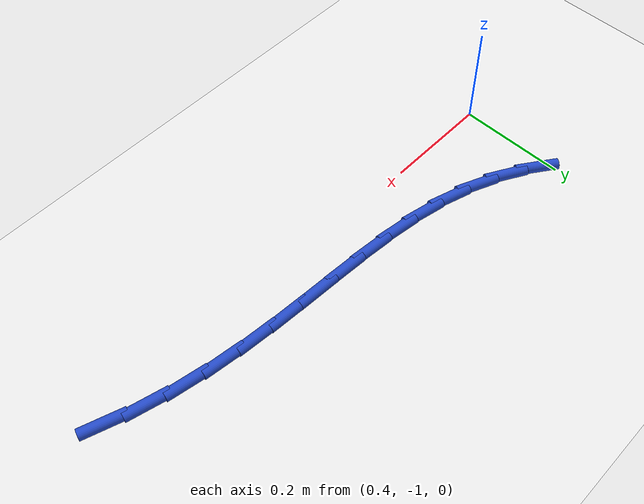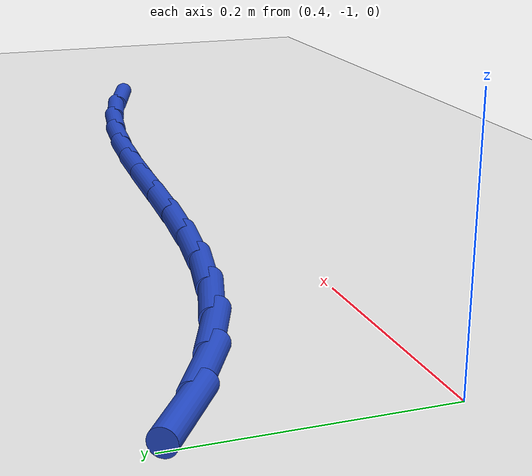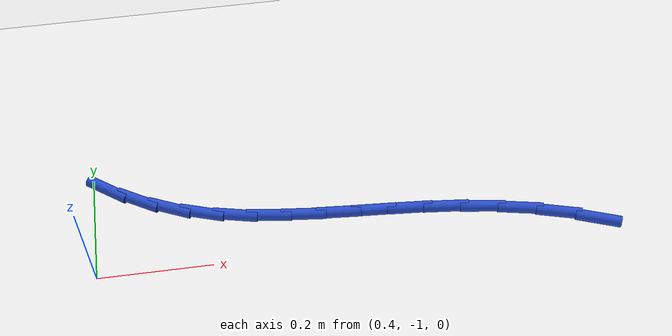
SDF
<sdf version="1.6">
 <world name="default">
  <model name="ground_plane">
   <static>1</static>
   <link name="link">
    <collision name="collision">
     <geometry><plane><normal>0 0 1</normal><size>100 100</size></plane></geometry>
     <surface><friction><ode><mu>100</mu><mu2>50</mu2></ode></friction></surface>
    </collision>
    <visual name="visual">
     <cast_shadows>0</cast_shadows>
     <geometry><plane><normal>0 0 1</normal><size>100 100</size></plane></geometry>
     <material>
      <script><uri>file://media/materials/scripts/gazebo.material</uri><name>Gazebo/WhiteGlow</name></script>
     </material>
    </visual>
   </link>
  </model>
  <model name="line">
   <link name="link_91">
    <pose>1.2749578417684302 -1.0029317350116989 0.01 0 1.57 -0.33917281439950187</pose>
    <collision name="collision">
     <geometry><cylinder><radius>0.01</radius><length>0.08</length></cylinder></geometry>
    </collision>
    <visual name="visual">
     <material>
      <script><name>Gazebo/Blue</name><uri>file://media/materials/scripts/gazebo.material</uri></script>
     </material>
     <geometry><cylinder><radius>0.01</radius><length>0.08</length></cylinder></geometry>
    </visual>
   </link>
   <link name="link_92">
    <pose>1.2093600452625846 -0.9797884087134253 0.01 0 1.57 -0.2567586073061776</pose>
    <collision name="collision">
     <geometry><cylinder><radius>0.01</radius><length>0.08</length></cylinder></geometry>
    </collision>
    <visual name="visual">
     <material>
      <script><name>Gazebo/Blue</name><uri>file://media/materials/scripts/gazebo.material</uri></script>
     </material>
     <geometry><cylinder><radius>0.01</radius><length>0.08</length></cylinder></geometry>
    </visual>
   </link>
   <link name="link_93">
    <pose>1.1440016977426912 -0.9626283300029139 0.01 0 1.57 -0.18663439988638209</pose>
    <collision name="collision">
     <geometry><cylinder><radius>0.01</radius><length>0.08</length></cylinder></geometry>
    </collision>
    <visual name="visual">
     <material>
      <script><name>Gazebo/Blue</name><uri>file://media/materials/scripts/gazebo.material</uri></script>
     </material>
     <geometry><cylinder><radius>0.01</radius><length>0.08</length></cylinder></geometry>
    </visual>
   </link>
   <link name="link_94">
    <pose>1.0790127668493599 -0.9503563402909 0.01 0 1.57 -0.13072973068575514</pose>
    <collision name="collision">
     <geometry><cylinder><radius>0.01</radius><length>0.08</length></cylinder></geometry>
    </collision>
    <visual name="visual">
     <material>
      <script><name>Gazebo/Blue</name><uri>file://media/materials/scripts/gazebo.material</uri></script>
     </material>
     <geometry><cylinder><radius>0.01</radius><length>0.08</length></cylinder></geometry>
    </visual>
   </link>
   <link name="link_95">
    <pose>1.0145232202231989 -0.9418772809881196 0.01 0 1.57 -0.09028426437969254</pose>
    <collision name="collision">
     <geometry><cylinder><radius>0.01</radius><length>0.08</length></cylinder></geometry>
    </collision>
    <visual name="visual">
     <material>
      <script><name>Gazebo/Blue</name><uri>file://media/materials/scripts/gazebo.material</uri></script>
     </material>
     <geometry><cylinder><radius>0.01</radius><length>0.08</length></cylinder></geometry>
    </visual>
   </link>
   <link name="link_96">
    <pose>0.950663025504816 -0.9360959935053075 0.01 0 1.57 -0.06612557937559062</pose>
    <collision name="collision">
     <geometry><cylinder><radius>0.01</radius><length>0.08</length></cylinder></geometry>
    </collision>
    <visual name="visual">
     <material>
      <script><name>Gazebo/Blue</name><uri>file://media/materials/scripts/gazebo.material</uri></script>
     </material>
     <geometry><cylinder><radius>0.01</radius><length>0.08</length></cylinder></geometry>
    </visual>
   </link>
   <link name="link_97">
    <pose>0.8875621503348217 -0.9319173192531999 0.01 0 1.57 -0.05894347122450765</pose>
    <collision name="collision">
     <geometry><cylinder><radius>0.01</radius><length>0.08</length></cylinder></geometry>
    </collision>
    <visual name="visual">
     <material>
      <script><name>Gazebo/Blue</name><uri>file://media/materials/scripts/gazebo.material</uri></script>
     </material>
     <geometry><cylinder><radius>0.01</radius><length>0.08</length></cylinder></geometry>
    </visual>
   </link>
   <link name="link_98">
    <pose>0.8253505623538233 -0.9282460996425319 0.01 0 1.57 -0.06948691921308095</pose>
    <collision name="collision">
     <geometry><cylinder><radius>0.01</radius><length>0.08</length></cylinder></geometry>
    </collision>
    <visual name="visual">
     <material>
      <script><name>Gazebo/Blue</name><uri>file://media/materials/scripts/gazebo.material</uri></script>
     </material>
     <geometry><cylinder><radius>0.01</radius><length>0.08</length></cylinder></geometry>
    </visual>
   </link>
   <link name="link_99">
    <pose>0.7641582292024303 -0.9239871760840391 0.01 0 1.57 -0.0986375221238938</pose>
    <collision name="collision">
     <geometry><cylinder><radius>0.01</radius><length>0.08</length></cylinder></geometry>
    </collision>
    <visual name="visual">
     <material>
      <script><name>Gazebo/Blue</name><uri>file://media/materials/scripts/gazebo.material</uri></script>
     </material>
     <geometry><cylinder><radius>0.01</radius><length>0.08</length></cylinder></geometry>
    </visual>
   </link>
   <link name="link_100">
    <pose>0.70411511852125 -0.9180453899884571 0.01 0 1.57 -0.14731215835800146</pose>
    <collision name="collision">
     <geometry><cylinder><radius>0.01</radius><length>0.08</length></cylinder></geometry>
    </collision>
    <visual name="visual">
     <material>
      <script><name>Gazebo/Blue</name><uri>file://media/materials/scripts/gazebo.material</uri></script>
     </material>
     <geometry><cylinder><radius>0.01</radius><length>0.08</length></cylinder></geometry>
    </visual>
   </link>
   <link name="link_101">
    <pose>0.6453511979508928 -0.9093255827665214 0.01 0 1.57 -0.21613349350859418</pose>
    <collision name="collision">
     <geometry><cylinder><radius>0.01</radius><length>0.08</length></cylinder></geometry>
    </collision>
    <visual name="visual">
     <material>
      <script><name>Gazebo/Blue</name><uri>file://media/materials/scripts/gazebo.material</uri></script>
     </material>
     <geometry><cylinder><radius>0.01</radius><length>0.08</length></cylinder></geometry>
    </visual>
   </link>
   <link name="link_102">
    <pose>0.5879964351319668 -0.8967325958289678 0.01 0 1.57 -0.3048250234599737</pose>
    <collision name="collision">
     <geometry><cylinder><radius>0.01</radius><length>0.08</length></cylinder></geometry>
    </collision>
    <visual name="visual">
     <material>
      <script><name>Gazebo/Blue</name><uri>file://media/materials/scripts/gazebo.material</uri></script>
     </material>
     <geometry><cylinder><radius>0.01</radius><length>0.08</length></cylinder></geometry>
    </visual>
   </link>
   <link name="link_103">
    <pose>0.5321807977050805 -0.8791712705865318 0.01 0 1.57 -0.4111117220569087</pose>
    <collision name="collision">
     <geometry><cylinder><radius>0.01</radius><length>0.08</length></cylinder></geometry>
    </collision>
    <visual name="visual">
     <material>
      <script><name>Gazebo/Blue</name><uri>file://media/materials/scripts/gazebo.material</uri></script>
     </material>
     <geometry><cylinder><radius>0.01</radius><length>0.08</length></cylinder></geometry>
    </visual>
   </link>
   <link name="link_104">
    <pose>0.4780350319712114 -0.8555662304320529 0.01 0 1.57 -0.5206095280394387</pose>
    <collision name="collision">
     <geometry><cylinder><radius>0.01</radius><length>0.08</length></cylinder></geometry>
    </collision>
    <visual name="visual">
     <material>
      <script><name>Gazebo/Blue</name><uri>file://media/materials/scripts/gazebo.material</uri></script>
     </material>
     <geometry><cylinder><radius>0.01</radius><length>0.08</length></cylinder></geometry>
    </visual>
   </link>
   <link name="link_105">
    <pose>0.4257185135903672 -0.8255694318679788 0.01 0 1.57 -0.6188341609292151</pose>
    <collision name="collision">
     <geometry><cylinder><radius>0.01</radius><length>0.08</length></cylinder></geometry>
    </collision>
    <visual name="visual">
     <material>
      <script><name>Gazebo/Blue</name><uri>file://media/materials/scripts/gazebo.material</uri></script>
     </material>
     <geometry><cylinder><radius>0.01</radius><length>0.08</length></cylinder></geometry>
    </visual>
   </link>
  </model>
 </world>
</sdf>
